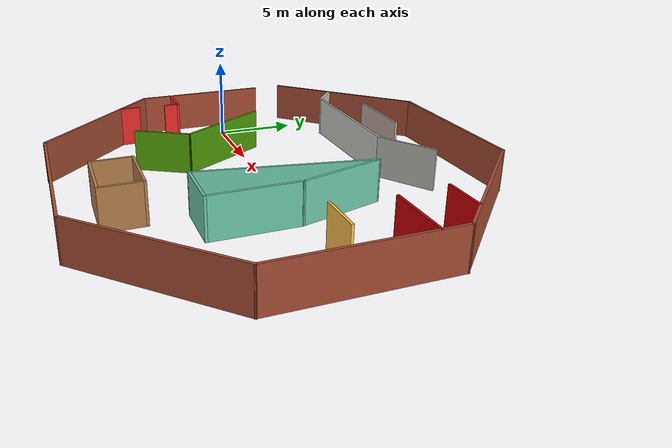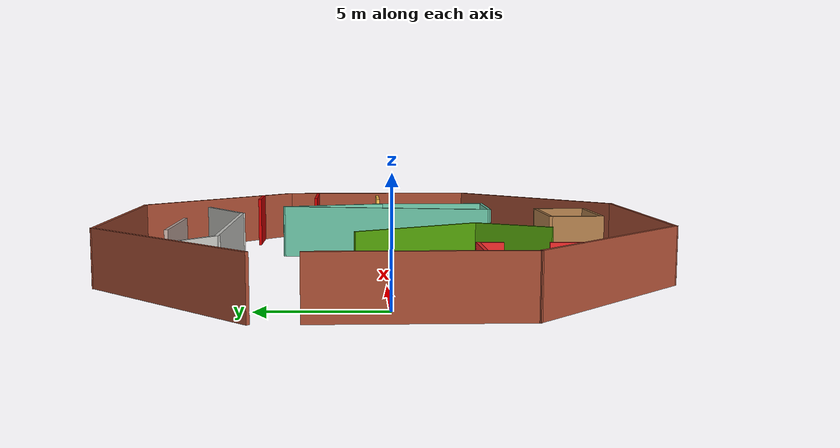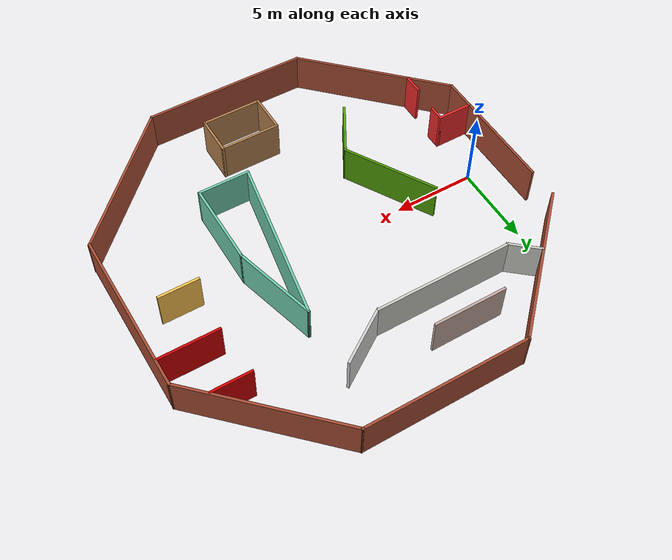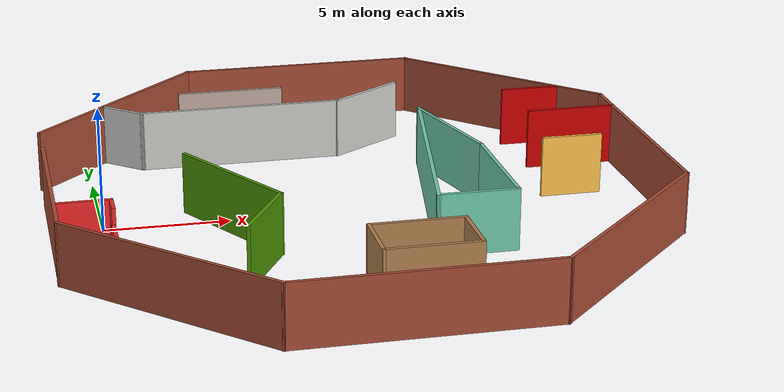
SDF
<?xml version='1.0'?>
<sdf version='1.7'>
  <model name='world_building_editor'>
    <pose>9.965 -0 0 0 -0 0</pose>
    <link name='Wall_100'>
      <collision name='Wall_100_Collision'>
        <geometry>
          <box>
            <size>6 0.15 2.5</size>
          </box>
        </geometry>
        <pose>0 0 1.25 0 -0 0</pose>
      </collision>
      <visual name='Wall_100_Visual'>
        <pose>0 0 1.25 0 -0 0</pose>
        <geometry>
          <box>
            <size>6 0.15 2.5</size>
          </box>
        </geometry>
        <material>
          <script>
            <uri>file://media/materials/scripts/gazebo.material</uri>
            <name>Gazebo/Grey</name>
          </script>
          <ambient>0.305882 0.603922 0.0235294 1</ambient>
        </material>
        <meta>
          <layer>0</layer>
        </meta>
      </visual>
      <pose>-5.07783 -1.27827 0 0 -0 -1.0472</pose>
    </link>
    <link name='Wall_104'>
      <collision name='Wall_104_Collision'>
        <geometry>
          <box>
            <size>3.5 0.15 2.5</size>
          </box>
        </geometry>
        <pose>0 0 1.25 0 -0 0</pose>
      </collision>
      <visual name='Wall_104_Visual'>
        <pose>0 0 1.25 0 -0 0</pose>
        <geometry>
          <box>
            <size>3.5 0.15 2.5</size>
          </box>
        </geometry>
        <material>
          <script>
            <uri>file://media/materials/scripts/gazebo.material</uri>
            <name>Gazebo/Grey</name>
          </script>
          <ambient>0.305882 0.603922 0.0235294 1</ambient>
        </material>
        <meta>
          <layer>0</layer>
        </meta>
      </visual>
      <pose>-4.45283 -5.26199 0 0 -0 -2.0944</pose>
    </link>
    <link name='Wall_107'>
      <collision name='Wall_107_Collision'>
        <geometry>
          <box>
            <size>4.5 0.15 2.5</size>
          </box>
        </geometry>
        <pose>0 0 1.25 0 -0 0</pose>
      </collision>
      <visual name='Wall_107_Visual'>
        <pose>0 0 1.25 0 -0 0</pose>
        <geometry>
          <box>
            <size>4.5 0.15 2.5</size>
          </box>
        </geometry>
        <material>
          <script>
            <uri>file://media/materials/scripts/gazebo.material</uri>
            <name>Gazebo/Grey</name>
          </script>
          <ambient>0.760784 0.662745 0.627451 1</ambient>
        </material>
        <meta>
          <layer>0</layer>
        </meta>
      </visual>
      <pose>-3.56524 8.84362 0 0 -0 3.14159</pose>
    </link>
    <link name='Wall_110'>
      <collision name='Wall_110_Collision'>
        <geometry>
          <box>
            <size>2.5 0.15 2.5</size>
          </box>
        </geometry>
        <pose>0 0 1.25 0 -0 0</pose>
      </collision>
      <visual name='Wall_110_Visual'>
        <pose>0 0 1.25 0 -0 0</pose>
        <geometry>
          <box>
            <size>2.5 0.15 2.5</size>
          </box>
        </geometry>
        <material>
          <script>
            <uri>file://media/materials/scripts/gazebo.material</uri>
            <name>Gazebo/Grey</name>
          </script>
          <ambient>0.8 0 0 1</ambient>
        </material>
        <meta>
          <layer>0</layer>
        </meta>
      </visual>
      <pose>9.23817 6.45631 0 0 -0 3.14159</pose>
    </link>
    <link name='Wall_112'>
      <collision name='Wall_112_Collision'>
        <geometry>
          <box>
            <size>3.75 0.15 2.5</size>
          </box>
        </geometry>
        <pose>0 0 1.25 0 -0 0</pose>
      </collision>
      <visual name='Wall_112_Visual'>
        <pose>0 0 1.25 0 -0 0</pose>
        <geometry>
          <box>
            <size>3.75 0.15 2.5</size>
          </box>
        </geometry>
        <material>
          <script>
            <uri>file://media/materials/scripts/gazebo.material</uri>
            <name>Gazebo/Grey</name>
          </script>
          <ambient>0.8 0 0 1</ambient>
        </material>
        <meta>
          <layer>0</layer>
        </meta>
      </visual>
      <pose>10.1123 3.41859 0 0 -0 3.14159</pose>
    </link>
    <link name='Wall_114'>
      <collision name='Wall_114_Collision'>
        <geometry>
          <box>
            <size>8.25 0.15 2.5</size>
          </box>
        </geometry>
        <pose>0 0 1.25 0 -0 0</pose>
      </collision>
      <visual name='Wall_114_Visual'>
        <pose>0 0 1.25 0 -0 0</pose>
        <geometry>
          <box>
            <size>8.25 0.15 2.5</size>
          </box>
        </geometry>
        <material>
          <script>
            <uri>file://media/materials/scripts/gazebo.material</uri>
            <name>Gazebo/Bricks</name>
          </script>
          <ambient>1 1 1 1</ambient>
        </material>
        <meta>
          <layer>0</layer>
        </meta>
      </visual>
      <pose>-11.965 -0.95 0 0 -0 1.5708</pose>
    </link>
    <link name='Wall_56'>
      <collision name='Wall_56_Collision'>
        <geometry>
          <box>
            <size>10 0.15 2.5</size>
          </box>
        </geometry>
        <pose>0 0 1.25 0 -0 0</pose>
      </collision>
      <visual name='Wall_56_Visual'>
        <pose>0 0 1.25 0 -0 0</pose>
        <geometry>
          <box>
            <size>10 0.15 2.5</size>
          </box>
        </geometry>
        <material>
          <script>
            <uri>file://media/materials/scripts/gazebo.material</uri>
            <name>Gazebo/Bricks</name>
          </script>
          <ambient>1 1 1 1</ambient>
        </material>
        <meta>
          <layer>0</layer>
        </meta>
      </visual>
      <pose>-8.4825 -8.4825 0 0 -0 -0.785398</pose>
    </link>
    <link name='Wall_58'>
      <collision name='Wall_58_Collision'>
        <geometry>
          <box>
            <size>10.15 0.15 2.5</size>
          </box>
        </geometry>
        <pose>0 0 1.25 0 -0 0</pose>
      </collision>
      <visual name='Wall_58_Visual'>
        <pose>0 0 1.25 0 -0 0</pose>
        <geometry>
          <box>
            <size>10.15 0.15 2.5</size>
          </box>
        </geometry>
        <material>
          <script>
            <uri>file://media/materials/scripts/gazebo.material</uri>
            <name>Gazebo/Bricks</name>
          </script>
          <ambient>1 1 1 1</ambient>
        </material>
        <meta>
          <layer>0</layer>
        </meta>
      </visual>
      <pose>0 -11.965 0 0 -0 0</pose>
    </link>
    <link name='Wall_60'>
      <collision name='Wall_60_Collision'>
        <geometry>
          <box>
            <size>10 0.15 2.5</size>
          </box>
        </geometry>
        <pose>0 0 1.25 0 -0 0</pose>
      </collision>
      <visual name='Wall_60_Visual'>
        <pose>0 0 1.25 0 -0 0</pose>
        <geometry>
          <box>
            <size>10 0.15 2.5</size>
          </box>
        </geometry>
        <material>
          <script>
            <uri>file://media/materials/scripts/gazebo.material</uri>
            <name>Gazebo/Bricks</name>
          </script>
          <ambient>1 1 1 1</ambient>
        </material>
        <meta>
          <layer>0</layer>
        </meta>
      </visual>
      <pose>8.4825 -8.4825 0 0 -0 0.785398</pose>
    </link>
    <link name='Wall_62'>
      <collision name='Wall_62_Collision'>
        <geometry>
          <box>
            <size>10.15 0.15 2.5</size>
          </box>
        </geometry>
        <pose>0 0 1.25 0 -0 0</pose>
      </collision>
      <visual name='Wall_62_Visual'>
        <pose>0 0 1.25 0 -0 0</pose>
        <geometry>
          <box>
            <size>10.15 0.15 2.5</size>
          </box>
        </geometry>
        <material>
          <script>
            <uri>file://media/materials/scripts/gazebo.material</uri>
            <name>Gazebo/Bricks</name>
          </script>
          <ambient>1 1 1 1</ambient>
        </material>
        <meta>
          <layer>0</layer>
        </meta>
      </visual>
      <pose>11.965 0 0 0 -0 1.5708</pose>
    </link>
    <link name='Wall_64'>
      <collision name='Wall_64_Collision'>
        <geometry>
          <box>
            <size>10 0.15 2.5</size>
          </box>
        </geometry>
        <pose>0 0 1.25 0 -0 0</pose>
      </collision>
      <visual name='Wall_64_Visual'>
        <pose>0 0 1.25 0 -0 0</pose>
        <geometry>
          <box>
            <size>10 0.15 2.5</size>
          </box>
        </geometry>
        <material>
          <script>
            <uri>file://media/materials/scripts/gazebo.material</uri>
            <name>Gazebo/Bricks</name>
          </script>
          <ambient>1 1 1 1</ambient>
        </material>
        <meta>
          <layer>0</layer>
        </meta>
      </visual>
      <pose>-8.4825 8.4825 0 0 -0 0.785398</pose>
    </link>
    <link name='Wall_66'>
      <collision name='Wall_66_Collision'>
        <geometry>
          <box>
            <size>10.15 0.15 2.5</size>
          </box>
        </geometry>
        <pose>0 0 1.25 0 -0 0</pose>
      </collision>
      <visual name='Wall_66_Visual'>
        <pose>0 0 1.25 0 -0 0</pose>
        <geometry>
          <box>
            <size>10.15 0.15 2.5</size>
          </box>
        </geometry>
        <material>
          <script>
            <uri>file://media/materials/scripts/gazebo.material</uri>
            <name>Gazebo/Bricks</name>
          </script>
          <ambient>1 1 1 1</ambient>
        </material>
        <meta>
          <layer>0</layer>
        </meta>
      </visual>
      <pose>0 11.965 0 0 -0 0</pose>
    </link>
    <link name='Wall_69'>
      <collision name='Wall_69_Collision'>
        <geometry>
          <box>
            <size>10 0.15 2.5</size>
          </box>
        </geometry>
        <pose>0 0 1.25 0 -0 0</pose>
      </collision>
      <visual name='Wall_69_Visual'>
        <pose>0 0 1.25 0 -0 0</pose>
        <geometry>
          <box>
            <size>10 0.15 2.5</size>
          </box>
        </geometry>
        <material>
          <script>
            <uri>file://media/materials/scripts/gazebo.material</uri>
            <name>Gazebo/Bricks</name>
          </script>
          <ambient>1 1 1 1</ambient>
        </material>
        <meta>
          <layer>0</layer>
        </meta>
      </visual>
      <pose>8.4825 8.4825 0 0 -0 -0.785398</pose>
    </link>
    <link name='Wall_72'>
      <collision name='Wall_72_Collision'>
        <geometry>
          <box>
            <size>5.25 0.15 2.5</size>
          </box>
        </geometry>
        <pose>0 0 1.25 0 -0 0</pose>
      </collision>
      <visual name='Wall_72_Visual'>
        <pose>0 0 1.25 0 -0 0</pose>
        <geometry>
          <box>
            <size>5.25 0.15 2.5</size>
          </box>
        </geometry>
        <material>
          <script>
            <uri>file://media/materials/scripts/gazebo.material</uri>
            <name>Gazebo/Grey</name>
          </script>
          <ambient>0.435294 0.796078 0.67451 1</ambient>
        </material>
        <meta>
          <layer>0</layer>
        </meta>
      </visual>
      <pose>4.52348 2.32839 0 0 -0 -1.309</pose>
    </link>
    <link name='Wall_73'>
      <collision name='Wall_73_Collision'>
        <geometry>
          <box>
            <size>5.25 0.15 2.5</size>
          </box>
        </geometry>
        <pose>0 0 1.25 0 -0 0</pose>
      </collision>
      <visual name='Wall_73_Visual'>
        <pose>0 0 1.25 0 -0 0</pose>
        <geometry>
          <box>
            <size>5.25 0.15 2.5</size>
          </box>
        </geometry>
        <material>
          <script>
            <uri>file://media/materials/scripts/gazebo.material</uri>
            <name>Gazebo/Grey</name>
          </script>
          <ambient>0.435294 0.796078 0.67451 1</ambient>
        </material>
        <meta>
          <layer>0</layer>
        </meta>
      </visual>
      <pose>5.18347 -2.68472 0 0 -0 -1.5708</pose>
    </link>
    <link name='Wall_74'>
      <collision name='Wall_74_Collision'>
        <geometry>
          <box>
            <size>3.25 0.15 2.5</size>
          </box>
        </geometry>
        <pose>0 0 1.25 0 -0 0</pose>
      </collision>
      <visual name='Wall_74_Visual'>
        <pose>0 0 1.25 0 -0 0</pose>
        <geometry>
          <box>
            <size>3.25 0.15 2.5</size>
          </box>
        </geometry>
        <material>
          <script>
            <uri>file://media/materials/scripts/gazebo.material</uri>
            <name>Gazebo/Grey</name>
          </script>
          <ambient>0.435294 0.796078 0.67451 1</ambient>
        </material>
        <meta>
          <layer>0</layer>
        </meta>
      </visual>
      <pose>3.63347 -5.23472 0 0 -0 3.14159</pose>
    </link>
    <link name='Wall_77'>
      <collision name='Wall_77_Collision'>
        <geometry>
          <box>
            <size>2.5 0.15 2.5</size>
          </box>
        </geometry>
        <pose>0 0 1.25 0 -0 0</pose>
      </collision>
      <visual name='Wall_77_Visual'>
        <pose>0 0 1.25 0 -0 0</pose>
        <geometry>
          <box>
            <size>2.5 0.15 2.5</size>
          </box>
        </geometry>
        <material>
          <script>
            <uri>file://media/materials/scripts/gazebo.material</uri>
            <name>Gazebo/Grey</name>
          </script>
          <ambient>1 0.764706 0.305882 1</ambient>
        </material>
        <meta>
          <layer>0</layer>
        </meta>
      </visual>
      <pose>9.04049 0.0305 0 0 -0 0</pose>
    </link>
    <link name='Wall_80'>
      <collision name='Wall_80_Collision'>
        <geometry>
          <box>
            <size>2.25 0.15 2.5</size>
          </box>
        </geometry>
        <pose>0 0 1.25 0 -0 0</pose>
      </collision>
      <visual name='Wall_80_Visual'>
        <pose>0 0 1.25 0 -0 0</pose>
        <geometry>
          <box>
            <size>2.25 0.15 2.5</size>
          </box>
        </geometry>
        <material>
          <script>
            <uri>file://media/materials/scripts/gazebo.material</uri>
            <name>Gazebo/Grey</name>
          </script>
          <ambient>0.937255 0.160784 0.160784 1</ambient>
        </material>
        <meta>
          <layer>0</layer>
        </meta>
      </visual>
      <pose>-10.9034 -3.1203 0 0 -0 0</pose>
    </link>
    <link name='Wall_81'>
      <collision name='Wall_81_Collision'>
        <geometry>
          <box>
            <size>1 0.15 2.5</size>
          </box>
        </geometry>
        <pose>0 0 1.25 0 -0 0</pose>
      </collision>
      <visual name='Wall_81_Visual'>
        <pose>0 0 1.25 0 -0 0</pose>
        <geometry>
          <box>
            <size>1 0.15 2.5</size>
          </box>
        </geometry>
        <material>
          <script>
            <uri>file://media/materials/scripts/gazebo.material</uri>
            <name>Gazebo/Grey</name>
          </script>
          <ambient>0.937255 0.160784 0.160784 1</ambient>
        </material>
        <meta>
          <layer>0</layer>
        </meta>
      </visual>
      <pose>-9.85341 -3.5453 0 0 -0 -1.5708</pose>
    </link>
    <link name='Wall_84'>
      <collision name='Wall_84_Collision'>
        <geometry>
          <box>
            <size>1.25 0.15 2.5</size>
          </box>
        </geometry>
        <pose>0 0 1.25 0 -0 0</pose>
      </collision>
      <visual name='Wall_84_Visual'>
        <pose>0 0 1.25 0 -0 0</pose>
        <geometry>
          <box>
            <size>1.25 0.15 2.5</size>
          </box>
        </geometry>
        <material>
          <script>
            <uri>file://media/materials/scripts/gazebo.material</uri>
            <name>Gazebo/Grey</name>
          </script>
          <ambient>0.937255 0.160784 0.160784 1</ambient>
        </material>
        <meta>
          <layer>0</layer>
        </meta>
      </visual>
      <pose>-10.0136 -6.31463 0 0 -0 1.5708</pose>
    </link>
    <link name='Wall_86'>
      <collision name='Wall_86_Collision'>
        <geometry>
          <box>
            <size>2.05865 0.15 2.5</size>
          </box>
        </geometry>
        <pose>0 0 1.25 0 -0 0</pose>
      </collision>
      <visual name='Wall_86_Visual'>
        <pose>0 0 1.25 0 -0 0</pose>
        <geometry>
          <box>
            <size>2.05865 0.15 2.5</size>
          </box>
        </geometry>
        <material>
          <script>
            <uri>file://media/materials/scripts/gazebo.material</uri>
            <name>Gazebo/CeilingTiled</name>
          </script>
          <ambient>1 1 1 1</ambient>
        </material>
        <meta>
          <layer>0</layer>
        </meta>
      </visual>
      <pose>-8.36952 7.16172 0 0 -0 -0.708442</pose>
    </link>
    <link name='Wall_90'>
      <collision name='Wall_90_Collision'>
        <geometry>
          <box>
            <size>8.5 0.15 2.5</size>
          </box>
        </geometry>
        <pose>0 0 1.25 0 -0 0</pose>
      </collision>
      <visual name='Wall_90_Visual'>
        <pose>0 0 1.25 0 -0 0</pose>
        <geometry>
          <box>
            <size>8.5 0.15 2.5</size>
          </box>
        </geometry>
        <material>
          <script>
            <uri>file://media/materials/scripts/gazebo.material</uri>
            <name>Gazebo/CeilingTiled</name>
          </script>
          <ambient>1 1 1 1</ambient>
        </material>
        <meta>
          <layer>0</layer>
        </meta>
      </visual>
      <pose>-3.49577 6.56673 0 0 -0 0</pose>
    </link>
    <link name='Wall_91'>
      <collision name='Wall_91_Collision'>
        <geometry>
          <box>
            <size>3.6729 0.15 2.5</size>
          </box>
        </geometry>
        <pose>0 0 1.25 0 -0 0</pose>
      </collision>
      <visual name='Wall_91_Visual'>
        <pose>0 0 1.25 0 -0 0</pose>
        <geometry>
          <box>
            <size>3.6729 0.15 2.5</size>
          </box>
        </geometry>
        <material>
          <script>
            <uri>file://media/materials/scripts/gazebo.material</uri>
            <name>Gazebo/CeilingTiled</name>
          </script>
          <ambient>1 1 1 1</ambient>
        </material>
        <meta>
          <layer>0</layer>
        </meta>
      </visual>
      <pose>2.17251 7.51528 0 0 -0 0.586236</pose>
    </link>
    <link name='Wall_93'>
      <collision name='Wall_93_Collision'>
        <geometry>
          <box>
            <size>10.333 0.15 2.5</size>
          </box>
        </geometry>
        <pose>0 0 1.25 0 -0 0</pose>
      </collision>
      <visual name='Wall_93_Visual'>
        <pose>0 0 1.25 0 -0 0</pose>
        <geometry>
          <box>
            <size>10.333 0.15 2.5</size>
          </box>
        </geometry>
        <material>
          <script>
            <uri>file://media/materials/scripts/gazebo.material</uri>
            <name>Gazebo/Grey</name>
          </script>
          <ambient>0.435294 0.796078 0.67451 1</ambient>
        </material>
        <meta>
          <layer>0</layer>
        </meta>
      </visual>
      <pose>2.97348 -0.221611 0 0 -0 -1.7465</pose>
    </link>
    <link name='Wall_95'>
      <collision name='Wall_95_Collision'>
        <geometry>
          <box>
            <size>2.5 0.15 2.5</size>
          </box>
        </geometry>
        <pose>0 0 1.25 0 -0 0</pose>
      </collision>
      <visual name='Wall_95_Visual'>
        <pose>0 0 1.25 0 -0 0</pose>
        <geometry>
          <box>
            <size>2.5 0.15 2.5</size>
          </box>
        </geometry>
        <material>
          <script>
            <uri>file://media/materials/scripts/gazebo.material</uri>
            <name>Gazebo/Wood</name>
          </script>
          <ambient>1 1 1 1</ambient>
        </material>
        <meta>
          <layer>0</layer>
        </meta>
      </visual>
      <pose>-1.11425 -8.73754 0 0 -0 -1.5708</pose>
    </link>
    <link name='Wall_96'>
      <collision name='Wall_96_Collision'>
        <geometry>
          <box>
            <size>3.75 0.15 2.5</size>
          </box>
        </geometry>
        <pose>0 0 1.25 0 -0 0</pose>
      </collision>
      <visual name='Wall_96_Visual'>
        <pose>0 0 1.25 0 -0 0</pose>
        <geometry>
          <box>
            <size>3.75 0.15 2.5</size>
          </box>
        </geometry>
        <material>
          <script>
            <uri>file://media/materials/scripts/gazebo.material</uri>
            <name>Gazebo/Wood</name>
          </script>
          <ambient>1 1 1 1</ambient>
        </material>
        <meta>
          <layer>0</layer>
        </meta>
      </visual>
      <pose>0.685752 -9.91254 0 0 -0 0</pose>
    </link>
    <link name='Wall_97'>
      <collision name='Wall_97_Collision'>
        <geometry>
          <box>
            <size>2.5 0.15 2.5</size>
          </box>
        </geometry>
        <pose>0 0 1.25 0 -0 0</pose>
      </collision>
      <visual name='Wall_97_Visual'>
        <pose>0 0 1.25 0 -0 0</pose>
        <geometry>
          <box>
            <size>2.5 0.15 2.5</size>
          </box>
        </geometry>
        <material>
          <script>
            <uri>file://media/materials/scripts/gazebo.material</uri>
            <name>Gazebo/Wood</name>
          </script>
          <ambient>1 1 1 1</ambient>
        </material>
        <meta>
          <layer>0</layer>
        </meta>
      </visual>
      <pose>2.48575 -8.73754 0 0 -0 1.5708</pose>
    </link>
    <link name='Wall_98'>
      <collision name='Wall_98_Collision'>
        <geometry>
          <box>
            <size>3.75 0.15 2.5</size>
          </box>
        </geometry>
        <pose>0 0 1.25 0 -0 0</pose>
      </collision>
      <visual name='Wall_98_Visual'>
        <pose>0 0 1.25 0 -0 0</pose>
        <geometry>
          <box>
            <size>3.75 0.15 2.5</size>
          </box>
        </geometry>
        <material>
          <script>
            <uri>file://media/materials/scripts/gazebo.material</uri>
            <name>Gazebo/Wood</name>
          </script>
          <ambient>1 1 1 1</ambient>
        </material>
        <meta>
          <layer>0</layer>
        </meta>
      </visual>
      <pose>0.685752 -7.56254 0 0 -0 3.14159</pose>
    </link>
    <static>1</static>
  </model>
</sdf>
